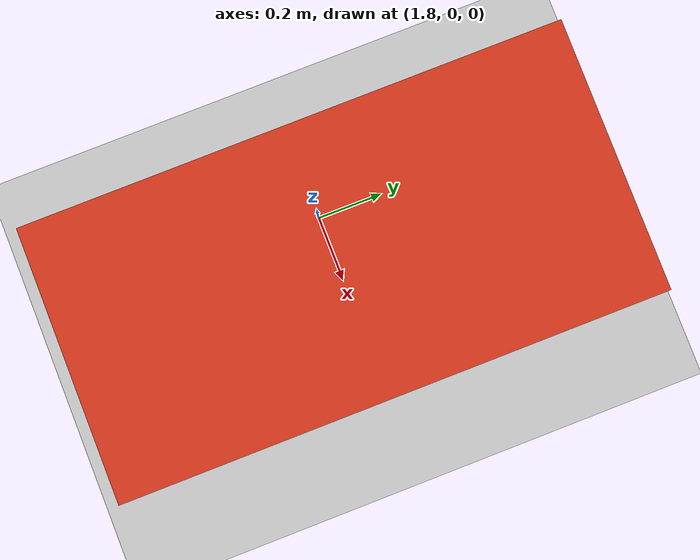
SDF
<?xml version="1.0"?>
<sdf version="1.9">
  <world name="voice_nav_test_world">
    <plugin filename="gz-sim-physics-system" name="gz::sim::systems::Physics" />
    <plugin filename="gz-sim-user-commands-system" name="gz::sim::systems::UserCommands" />
    <plugin
      filename="gz-sim-scene-broadcaster-system"
      name="gz::sim::systems::SceneBroadcaster" />
    <plugin filename="gz-sim-sensors-system" name="gz::sim::systems::Sensors">
      <render_engine>ogre2</render_engine>
    </plugin>

    <!-- Bound headless pacing so the original 10 Hz sensor stamp stays
         within the fixed Collision Monitor source-age contract during
         component generation changes. -->
    <physics name="default_physics" type="ode">
      <max_step_size>0.001</max_step_size>
      <real_time_update_rate>500</real_time_update_rate>
    </physics>

    <gravity>0 0 -9.8</gravity>

    <light name="sun" type="directional">
      <cast_shadows>true</cast_shadows>
      <pose>0 0 10 0 0 0</pose>
      <diffuse>0.8 0.8 0.8 1</diffuse>
      <specular>0.2 0.2 0.2 1</specular>
      <attenuation>
        <range>1000</range>
        <constant>0.9</constant>
        <linear>0.01</linear>
        <quadratic>0.001</quadratic>
      </attenuation>
      <direction>-0.5 0.1 -0.9</direction>
    </light>

    <model name="ground">
      <static>true</static>
      <link name="ground_link">
        <collision name="ground_collision">
          <geometry>
            <plane>
              <normal>0 0 1</normal>
              <size>20 20</size>
            </plane>
          </geometry>
        </collision>
        <visual name="ground_visual">
          <geometry>
            <plane>
              <normal>0 0 1</normal>
              <size>20 20</size>
            </plane>
          </geometry>
          <material>
            <ambient>0.65 0.65 0.65 1</ambient>
            <diffuse>0.75 0.75 0.75 1</diffuse>
          </material>
        </visual>
      </link>
    </model>

    <model name="test_obstacle">
      <static>true</static>
      <pose>2 0 0.5 0 0 0</pose>
      <link name="obstacle_link">
        <collision name="obstacle_collision">
          <geometry>
            <box>
              <size>0.5 1.0 1.0</size>
            </box>
          </geometry>
        </collision>
        <visual name="obstacle_visual">
          <geometry>
            <box>
              <size>0.5 1.0 1.0</size>
            </box>
          </geometry>
          <material>
            <ambient>0.7 0.15 0.1 1</ambient>
            <diffuse>0.8 0.2 0.1 1</diffuse>
          </material>
        </visual>
      </link>
    </model>
  </world>
</sdf>
